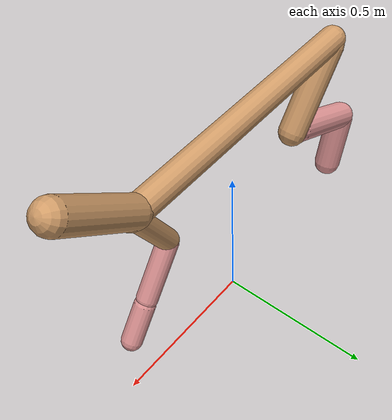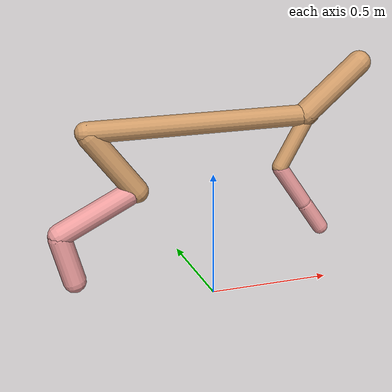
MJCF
<mujoco model="cheetah">
  <compiler angle="radian" coordinate="local" inertiafromgeom="true" settotalmass="14" />
  <default>
    <joint armature=".1" damping=".01" limited="true" solimplimit="0 .8 .03" solreflimit=".02 1" stiffness="8" />
    <geom conaffinity="0" condim="3" contype="1" friction="0.8 .1 .1" rgba="0.8 0.6 .4 1" solimp="0.0 0.8 0.01" solref="0.02 1" />
    <motor ctrllimited="true" ctrlrange="-1 1" />
  </default>
  <size nstack="300000" nuser_geom="1" />
  <option gravity="0 0 -9.81" timestep="0.01" />
  <worldbody>
    <body name="torso" pos="0.0 0.0 0.7120359241213746">
      <joint armature="0" axis="1 0 0" damping="0" limited="false" name="ignorex" pos="0 0 0" stiffness="0" type="slide" />
      <joint armature="0" axis="0 0 1" damping="0" limited="false" name="ignorez" pos="0 0 0" stiffness="0" type="slide" />
      <joint armature="0" axis="0 1 0" damping="0" limited="false" name="ignorey" pos="0 0 0" stiffness="0" type="hinge" />
      <geom fromto="-0.5 0.0 0.0 0.40464352388256525 0.0 0.0" name="torso" size="0.04165757494718474" type="capsule" />
      <geom axisangle="0 1 0 .87" name="head" pos="0.5046435238825652 0.0 0.1" size="0.04858564433523316 0.15" type="capsule" />

      <body name="bthigh" pos="-.5 0 0">
        <joint axis="0 1 0" damping="6" name="bthigh" pos="0 0 0" range="-.52 1.05" stiffness="240" type="hinge" />
        <geom axisangle="0 1 0 -3.8" name="bthigh" pos="0.10090175653031187 0.0 -0.13117228348940543" size="0.04547952226269272 0.14647899067593162" type="capsule" />
        <body name="bshin" pos="0.16180351306062374 0.0 -0.25234456697881086">
          <joint axis="0 1 0" damping="4.5" name="bshin" pos="0 0 0" range="-.785 .785" stiffness="180" type="hinge" />
          <geom axisangle="0 1 0 -2.03" name="bshin" pos="-0.14136846497495373 0.0 -0.07068423248747686" rgba="0.9 0.6 0.6 1" size="0.04547952226269272 0.15152999035441203" type="capsule" />
          <body name="bfoot" pos="-0.28273692994990746 0.0 -0.14136846497495373">
            <joint axis="0 1 0" damping="3" name="bfoot" pos="0 0 0" range="-.4 .785" stiffness="120" type="hinge" />
            <geom axisangle="0 1 0 -.27" name="bfoot" pos="0.03028329458435071 0.0 -0.09791598582273396" rgba="0.9 0.6 0.6 1" size="0.04547952226269272 0.09495879395543154" type="capsule" />
            <inertial mass="10" />
          </body>
        </body>
      </body>
      <body name="fthigh" pos="0.4046435238825652 0.0 0.0">
        <joint axis="0 1 0" damping="4.5" name="fthigh" pos="0 0 0" range="-1.5 0.8" stiffness="180" type="hinge" />
        <geom axisangle="0 1 0 .52" name="fthigh" pos="-0.0615968280240729 0.0 -0.10559456232698211" size="0.0322 0.11632277199867408" type="capsule" />
        <body name="fshin" pos="-0.1231936560481458 0.0 -0.21118912465396422">
          <joint axis="0 1 0" damping="3" name="fshin" pos="0 0 0" range="-1.2 1.1" stiffness="120" type="hinge" />
          <geom axisangle="0 1 0 -.6" name="fshin" pos="0.05721787892734582 0.0 -0.07922475543786343" rgba="0.9 0.6 0.6 1" size="0.0322 0.09270837467563497" type="capsule" />
          <body name="ffoot" pos="0.11443575785469164 0.0 -0.15844951087572687">
            <joint axis="0 1 0" damping="1.5" name="ffoot" pos="0 0 0" range="-3.1 -0.3" stiffness="60" type="hinge" />
            <geom axisangle="0 1 0 -.6" name="ffoot" pos="0.04025350650327208 0.0 -0.06261656567175658" rgba="0.9 0.6 0.6 1" size="0.0322 0.06122251157824952" type="capsule" />
            <inertial mass="10" />
          </body>
        </body>
      </body>
    </body>
  </worldbody>
  <actuator>
    <motor gear="120" joint="bthigh" name="bthigh" />
    <motor gear="90" joint="bshin" name="bshin" />
    <motor gear="60" joint="bfoot" name="bfoot" />
    <motor gear="120" joint="fthigh" name="fthigh" />
    <motor gear="60" joint="fshin" name="fshin" />
    <motor gear="30" joint="ffoot" name="ffoot" />
  </actuator>
</mujoco>
